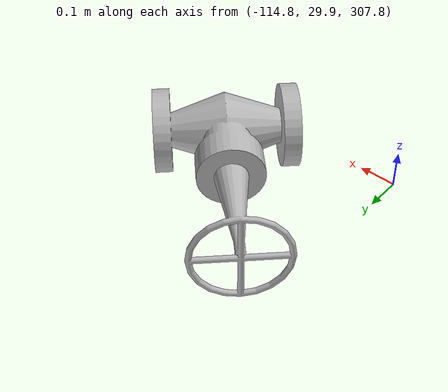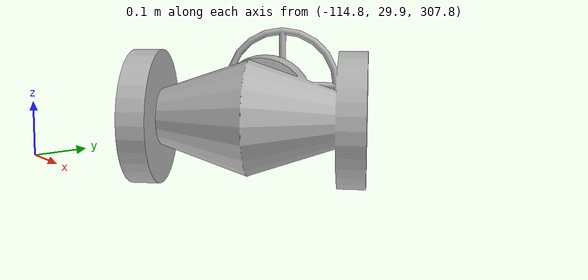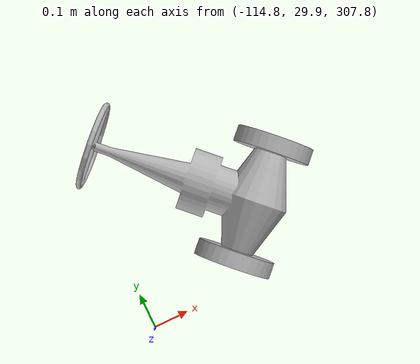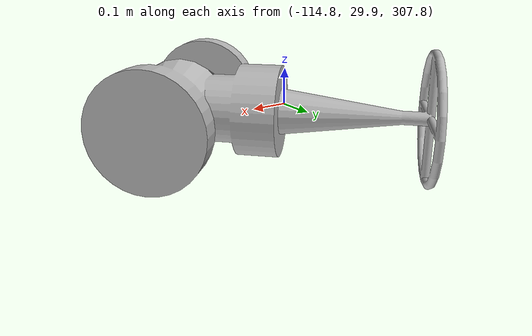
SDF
<?xml version='1.0'?>
<sdf version='1.7'>
    <model name='20-2003VF'>
        <static>true</static>
        <link name='link0'>
            <visual name="visual0">
                <pose>0 0 0 0 0 0</pose>
                <geometry>
                    <mesh>
                        <uri>model://huldra-models/20-2003VF/meshes/20-2003VF.obj</uri>
                    </mesh>
                </geometry>
            </visual>
        </link>
    </model>
</sdf>
